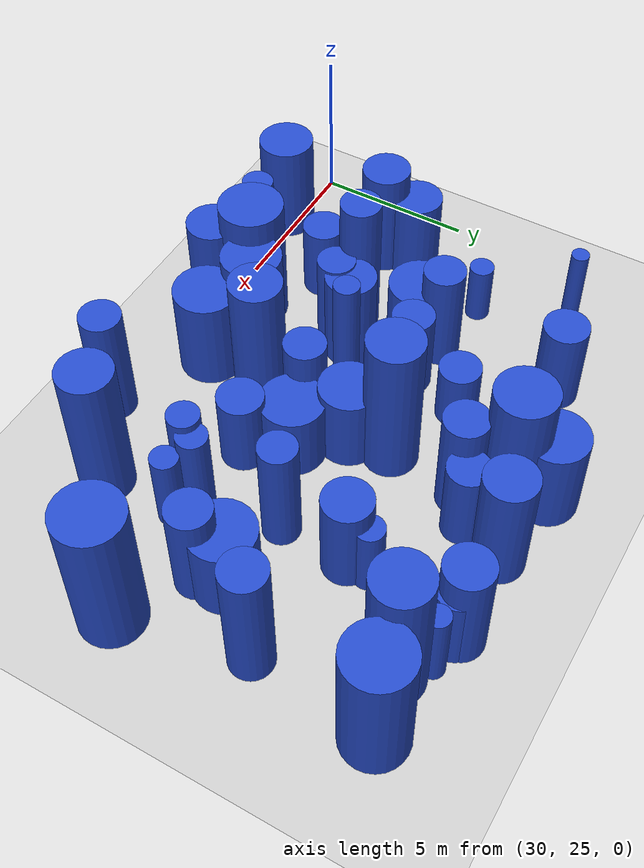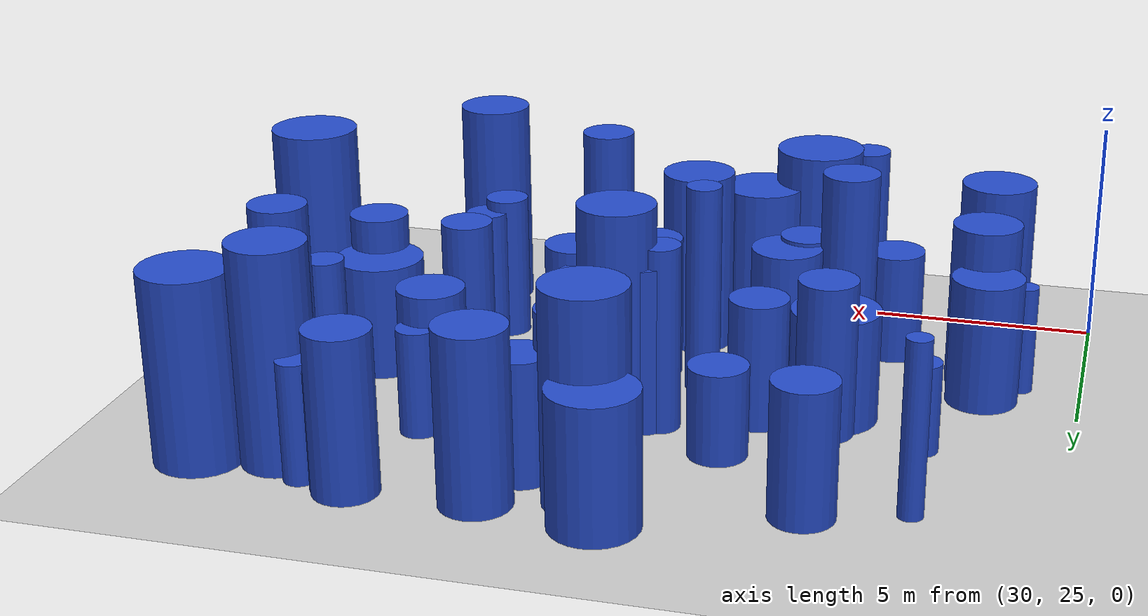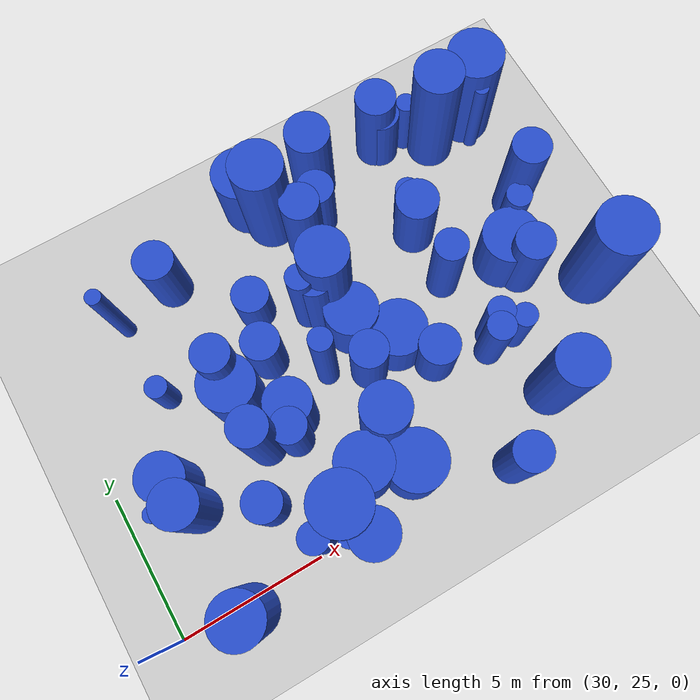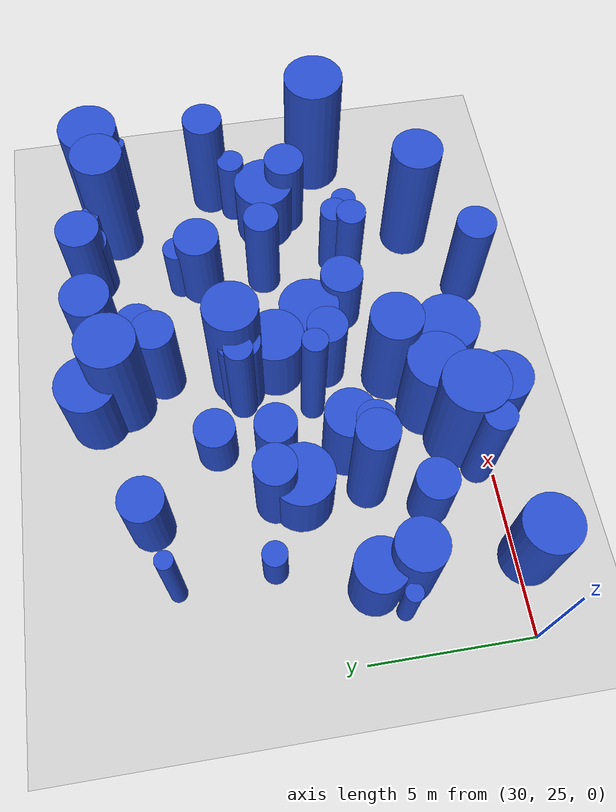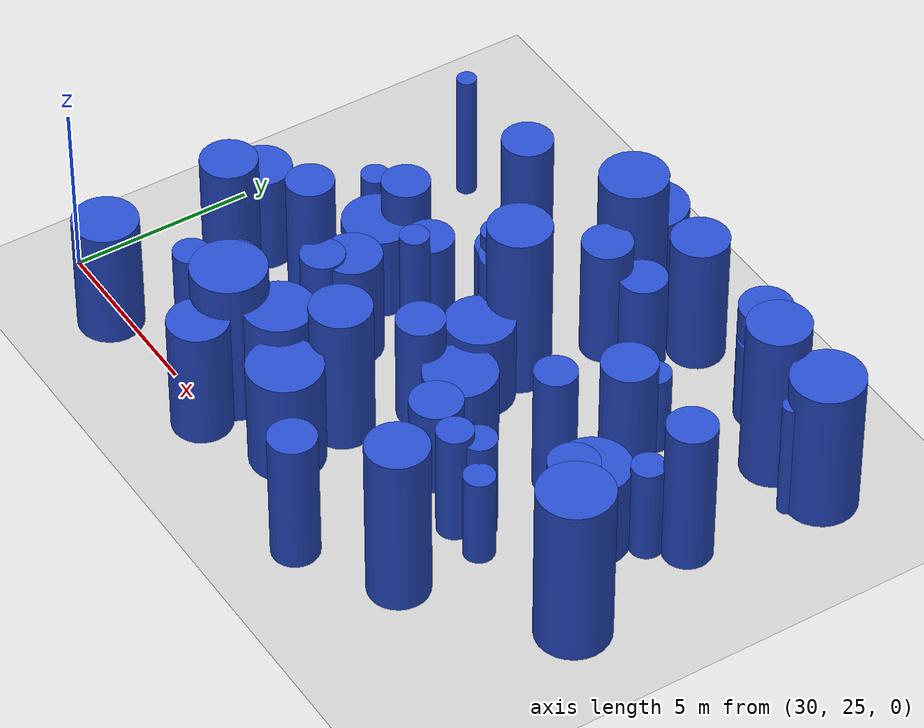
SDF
<sdf version="1.6">
 <world name="default">
  <model name="ground_plane">
   <static>1</static>
   <link name="link">
    <collision name="collision">
     <geometry><plane><normal>0 0 1</normal><size>100 100</size></plane></geometry>
     <surface><friction><ode><mu>100</mu><mu2>50</mu2></ode></friction></surface>
    </collision>
    <visual name="visual">
     <cast_shadows>0</cast_shadows>
     <geometry><plane><normal>0 0 1</normal><size>100 100</size></plane></geometry>
     <material>
      <script><uri>file://media/materials/scripts/gazebo.material</uri><name>Gazebo/Grey</name></script>
     </material>
    </visual>
   </link>
  </model>
  <model name="8">
   <static>0</static>
   <link name="link">
    <inertial>
     <mass>2</mass>
     <inertia><ixx>4.21888</ixx><ixy>0</ixy><ixz>0</ixz><iyy>4.21888</iyy><iyz>0</iyz><izz>0.689911</izz></inertia>
    </inertial>
    <collision name="collision">
     <geometry><cylinder><length>4.82115</length><radius>0.830609</radius></cylinder></geometry>
     <surface><contact><collide_without_contact>1</collide_without_contact></contact></surface>
    </collision>
    <visual name="visual">
     <geometry><cylinder><length>4.82115</length><radius>0.830609</radius></cylinder></geometry>
     <material>
      <script><uri>file://media/materials/scripts/gazebo.material</uri><name>Gazebo/Blue</name></script>
     </material>
    </visual>
    <gravity>0</gravity>
   </link>
   <pose>45.7281 35.9267 2.41058 0 -0 0</pose>
  </model>
  <model name="18">
   <static>0</static>
   <link name="link">
    <inertial>
     <mass>2</mass>
     <inertia><ixx>1.93693</ixx><ixy>0</ixy><ixz>0</ixz><iyy>1.93693</iyy><iyz>0</iyz><izz>0.344966</izz></inertia>
    </inertial>
    <collision name="collision">
     <geometry><cylinder><length>3.25372</length><radius>0.587338</radius></cylinder></geometry>
     <surface><contact><collide_without_contact>1</collide_without_contact></contact></surface>
    </collision>
    <visual name="visual">
     <geometry><cylinder><length>3.25372</length><radius>0.587338</radius></cylinder></geometry>
     <material>
      <script><uri>file://media/materials/scripts/gazebo.material</uri><name>Gazebo/Blue</name></script>
     </material>
    </visual>
    <gravity>0</gravity>
   </link>
   <pose>36.1652 28.7323 1.62686 0 -0 0</pose>
  </model>
  <model name="24">
   <static>0</static>
   <link name="link">
    <inertial>
     <mass>2</mass>
     <inertia><ixx>2.50462</ixx><ixy>0</ixy><ixz>0</ixz><iyy>2.50462</iyy><iyz>0</iyz><izz>0.451325</izz></inertia>
    </inertial>
    <collision name="collision">
     <geometry><cylinder><length>3.69781</length><radius>0.671807</radius></cylinder></geometry>
     <surface><contact><collide_without_contact>1</collide_without_contact></contact></surface>
    </collision>
    <visual name="visual">
     <geometry><cylinder><length>3.69781</length><radius>0.671807</radius></cylinder></geometry>
     <material>
      <script><uri>file://media/materials/scripts/gazebo.material</uri><name>Gazebo/Blue</name></script>
     </material>
    </visual>
    <gravity>0</gravity>
   </link>
   <pose>39.0289 32.3304 1.8489 0 -0 0</pose>
  </model>
  <model name="26">
   <static>0</static>
   <link name="link">
    <inertial>
     <mass>2</mass>
     <inertia><ixx>2.48469</ixx><ixy>0</ixy><ixz>0</ixz><iyy>2.48469</iyy><iyz>0</iyz><izz>0.314146</izz></inertia>
    </inertial>
    <collision name="collision">
     <geometry><cylinder><length>3.73707</length><radius>0.560487</radius></cylinder></geometry>
     <surface><contact><collide_without_contact>1</collide_without_contact></contact></surface>
    </collision>
    <visual name="visual">
     <geometry><cylinder><length>3.73707</length><radius>0.560487</radius></cylinder></geometry>
     <material>
      <script><uri>file://media/materials/scripts/gazebo.material</uri><name>Gazebo/Blue</name></script>
     </material>
    </visual>
    <gravity>0</gravity>
   </link>
   <pose>43.2934 31.0546 1.86853 0 -0 0</pose>
  </model>
  <model name="50">
   <static>0</static>
   <link name="link">
    <inertial>
     <mass>2</mass>
     <inertia><ixx>1.52309</ixx><ixy>0</ixy><ixz>0</ixz><iyy>1.52309</iyy><iyz>0</iyz><izz>0.943157</izz></inertia>
    </inertial>
    <collision name="collision">
     <geometry><cylinder><length>2.51179</length><radius>0.971163</radius></cylinder></geometry>
     <surface><contact><collide_without_contact>1</collide_without_contact></contact></surface>
    </collision>
    <visual name="visual">
     <geometry><cylinder><length>2.51179</length><radius>0.971163</radius></cylinder></geometry>
     <material>
      <script><uri>file://media/materials/scripts/gazebo.material</uri><name>Gazebo/Blue</name></script>
     </material>
    </visual>
    <gravity>0</gravity>
   </link>
   <pose>35.1033 31.0404 1.25589 0 -0 0</pose>
  </model>
  <model name="54">
   <static>0</static>
   <link name="link">
    <inertial>
     <mass>2</mass>
     <inertia><ixx>1.94131</ixx><ixy>0</ixy><ixz>0</ixz><iyy>1.94131</iyy><iyz>0</iyz><izz>0.231084</izz></inertia>
    </inertial>
    <collision name="collision">
     <geometry><cylinder><length>3.30977</length><radius>0.480712</radius></cylinder></geometry>
     <surface><contact><collide_without_contact>1</collide_without_contact></contact></surface>
    </collision>
    <visual name="visual">
     <geometry><cylinder><length>3.30977</length><radius>0.480712</radius></cylinder></geometry>
     <material>
      <script><uri>file://media/materials/scripts/gazebo.material</uri><name>Gazebo/Blue</name></script>
     </material>
    </visual>
    <gravity>0</gravity>
   </link>
   <pose>43.3469 28.1129 1.65489 0 -0 0</pose>
  </model>
  <model name="61">
   <static>0</static>
   <link name="link">
    <inertial>
     <mass>2</mass>
     <inertia><ixx>2.09542</ixx><ixy>0</ixy><ixz>0</ixz><iyy>2.09542</iyy><iyz>0</iyz><izz>0.981414</izz></inertia>
    </inertial>
    <collision name="collision">
     <geometry><cylinder><length>3.10294</length><radius>0.990663</radius></cylinder></geometry>
     <surface><contact><collide_without_contact>1</collide_without_contact></contact></surface>
    </collision>
    <visual name="visual">
     <geometry><cylinder><length>3.10294</length><radius>0.990663</radius></cylinder></geometry>
     <material>
      <script><uri>file://media/materials/scripts/gazebo.material</uri><name>Gazebo/Blue</name></script>
     </material>
    </visual>
    <gravity>0</gravity>
   </link>
   <pose>38.9949 25.9241 1.55147 0 -0 0</pose>
  </model>
  <model name="64">
   <static>0</static>
   <link name="link">
    <inertial>
     <mass>2</mass>
     <inertia><ixx>1.21441</ixx><ixy>0</ixy><ixz>0</ixz><iyy>1.21441</iyy><iyz>0</iyz><izz>0.120471</izz></inertia>
    </inertial>
    <collision name="collision">
     <geometry><cylinder><length>2.63155</length><radius>0.34709</radius></cylinder></geometry>
     <surface><contact><collide_without_contact>1</collide_without_contact></contact></surface>
    </collision>
    <visual name="visual">
     <geometry><cylinder><length>2.63155</length><radius>0.34709</radius></cylinder></geometry>
     <material>
      <script><uri>file://media/materials/scripts/gazebo.material</uri><name>Gazebo/Blue</name></script>
     </material>
    </visual>
    <gravity>0</gravity>
   </link>
   <pose>45.0063 36.6208 1.31577 0 -0 0</pose>
  </model>
  <model name="77">
   <static>0</static>
   <link name="link">
    <inertial>
     <mass>2</mass>
     <inertia>
      <ixx>1.03563</ixx>
      <ixy>0</ixy>
      <ixz>0</ixz>
      <iyy>1.03563</iyy>
      <iyz>0</iyz>
      <izz>0.0714737</izz>
     </inertia>
    </inertial>
    <collision name="collision">
     <geometry><cylinder><length>2.44936</length><radius>0.267346</radius></cylinder></geometry>
     <surface><contact><collide_without_contact>1</collide_without_contact></contact></surface>
    </collision>
    <visual name="visual">
     <geometry><cylinder><length>2.44936</length><radius>0.267346</radius></cylinder></geometry>
     <material>
      <script><uri>file://media/materials/scripts/gazebo.material</uri><name>Gazebo/Blue</name></script>
     </material>
    </visual>
    <gravity>0</gravity>
   </link>
   <pose>31.3145 28.5993 1.22468 0 -0 0</pose>
  </model>
  <model name="85">
   <static>0</static>
   <link name="link">
    <inertial>
     <mass>2</mass>
     <inertia><ixx>2.93221</ixx><ixy>0</ixy><ixz>0</ixz><iyy>2.93221</iyy><iyz>0</iyz><izz>0.192684</izz></inertia>
    </inertial>
    <collision name="collision">
     <geometry><cylinder><length>4.12495</length><radius>0.438958</radius></cylinder></geometry>
     <surface><contact><collide_without_contact>1</collide_without_contact></contact></surface>
    </collision>
    <visual name="visual">
     <geometry><cylinder><length>4.12495</length><radius>0.438958</radius></cylinder></geometry>
     <material>
      <script><uri>file://media/materials/scripts/gazebo.material</uri><name>Gazebo/Blue</name></script>
     </material>
    </visual>
    <gravity>0</gravity>
   </link>
   <pose>38.6 32.3805 2.06248 0 -0 0</pose>
  </model>
  <model name="124">
   <static>0</static>
   <link name="link">
    <inertial>
     <mass>2</mass>
     <inertia><ixx>1.24879</ixx><ixy>0</ixy><ixz>0</ixz><iyy>1.24879</iyy><iyz>0</iyz><izz>0.170517</izz></inertia>
    </inertial>
    <collision name="collision">
     <geometry><cylinder><length>2.64219</length><radius>0.412937</radius></cylinder></geometry>
     <surface><contact><collide_without_contact>1</collide_without_contact></contact></surface>
    </collision>
    <visual name="visual">
     <geometry><cylinder><length>2.64219</length><radius>0.412937</radius></cylinder></geometry>
     <material>
      <script><uri>file://media/materials/scripts/gazebo.material</uri><name>Gazebo/Blue</name></script>
     </material>
    </visual>
    <gravity>0</gravity>
   </link>
   <pose>44.3948 28.1453 1.3211 0 -0 0</pose>
  </model>
  <model name="127">
   <static>0</static>
   <link name="link">
    <inertial>
     <mass>2</mass>
     <inertia><ixx>2.70302</ixx><ixy>0</ixy><ixz>0</ixz><iyy>2.70302</iyy><iyz>0</iyz><izz>0.394791</izz></inertia>
    </inertial>
    <collision name="collision">
     <geometry><cylinder><length>3.87734</length><radius>0.628324</radius></cylinder></geometry>
     <surface><contact><collide_without_contact>1</collide_without_contact></contact></surface>
    </collision>
    <visual name="visual">
     <geometry><cylinder><length>3.87734</length><radius>0.628324</radius></cylinder></geometry>
     <material>
      <script><uri>file://media/materials/scripts/gazebo.material</uri><name>Gazebo/Blue</name></script>
     </material>
    </visual>
    <gravity>0</gravity>
   </link>
   <pose>41.9268 24.3981 1.93867 0 -0 0</pose>
  </model>
  <model name="133">
   <static>0</static>
   <link name="link">
    <inertial>
     <mass>2</mass>
     <inertia>
      <ixx>2.08785</ixx>
      <ixy>0</ixy>
      <ixz>0</ixz>
      <iyy>2.08785</iyy>
      <iyz>0</iyz>
      <izz>0.0660541</izz>
     </inertia>
    </inertial>
    <collision name="collision">
     <geometry><cylinder><length>3.51126</length><radius>0.25701</radius></cylinder></geometry>
     <surface><contact><collide_without_contact>1</collide_without_contact></contact></surface>
    </collision>
    <visual name="visual">
     <geometry><cylinder><length>3.51126</length><radius>0.25701</radius></cylinder></geometry>
     <material>
      <script><uri>file://media/materials/scripts/gazebo.material</uri><name>Gazebo/Blue</name></script>
     </material>
    </visual>
    <gravity>0</gravity>
   </link>
   <pose>47.1721 35.3749 1.75563 0 -0 0</pose>
  </model>
  <model name="157">
   <static>0</static>
   <link name="link">
    <inertial>
     <mass>2</mass>
     <inertia><ixx>1.66428</ixx><ixy>0</ixy><ixz>0</ixz><iyy>1.66428</iyy><iyz>0</iyz><izz>0.47442</izz></inertia>
    </inertial>
    <collision name="collision">
     <geometry><cylinder><length>2.92616</length><radius>0.688782</radius></cylinder></geometry>
     <surface><contact><collide_without_contact>1</collide_without_contact></contact></surface>
    </collision>
    <visual name="visual">
     <geometry><cylinder><length>2.92616</length><radius>0.688782</radius></cylinder></geometry>
     <material>
      <script><uri>file://media/materials/scripts/gazebo.material</uri><name>Gazebo/Blue</name></script>
     </material>
    </visual>
    <gravity>0</gravity>
   </link>
   <pose>34.9365 35.6566 1.46308 0 -0 0</pose>
  </model>
  <model name="177">
   <static>0</static>
   <link name="link">
    <inertial>
     <mass>2</mass>
     <inertia><ixx>2.3402</ixx><ixy>0</ixy><ixz>0</ixz><iyy>2.3402</iyy><iyz>0</iyz><izz>0.645349</izz></inertia>
    </inertial>
    <collision name="collision">
     <geometry><cylinder><length>3.47924</length><radius>0.803336</radius></cylinder></geometry>
     <surface><contact><collide_without_contact>1</collide_without_contact></contact></surface>
    </collision>
    <visual name="visual">
     <geometry><cylinder><length>3.47924</length><radius>0.803336</radius></cylinder></geometry>
     <material>
      <script><uri>file://media/materials/scripts/gazebo.material</uri><name>Gazebo/Blue</name></script>
     </material>
    </visual>
    <gravity>0</gravity>
   </link>
   <pose>36.8092 24.7473 1.73962 0 -0 0</pose>
  </model>
  <model name="178">
   <static>0</static>
   <link name="link">
    <inertial>
     <mass>2</mass>
     <inertia><ixx>2.36862</ixx><ixy>0</ixy><ixz>0</ixz><iyy>2.36862</iyy><iyz>0</iyz><izz>0.763375</izz></inertia>
    </inertial>
    <collision name="collision">
     <geometry><cylinder><length>3.45276</length><radius>0.873713</radius></cylinder></geometry>
     <surface><contact><collide_without_contact>1</collide_without_contact></contact></surface>
    </collision>
    <visual name="visual">
     <geometry><cylinder><length>3.45276</length><radius>0.873713</radius></cylinder></geometry>
     <material>
      <script><uri>file://media/materials/scripts/gazebo.material</uri><name>Gazebo/Blue</name></script>
     </material>
    </visual>
    <gravity>0</gravity>
   </link>
   <pose>32.3194 24.6572 1.72638 0 -0 0</pose>
  </model>
  <model name="181">
   <static>0</static>
   <link name="link">
    <inertial>
     <mass>2</mass>
     <inertia><ixx>4.4473</ixx><ixy>0</ixy><ixz>0</ixz><iyy>4.4473</iyy><iyz>0</iyz><izz>0.703906</izz></inertia>
    </inertial>
    <collision name="collision">
     <geometry><cylinder><length>4.95702</length><radius>0.838991</radius></cylinder></geometry>
     <surface><contact><collide_without_contact>1</collide_without_contact></contact></surface>
    </collision>
    <visual name="visual">
     <geometry><cylinder><length>4.95702</length><radius>0.838991</radius></cylinder></geometry>
     <material>
      <script><uri>file://media/materials/scripts/gazebo.material</uri><name>Gazebo/Blue</name></script>
     </material>
    </visual>
    <gravity>0</gravity>
   </link>
   <pose>39.5142 32.4462 2.47851 0 -0 0</pose>
  </model>
  <model name="187">
   <static>0</static>
   <link name="link">
    <inertial>
     <mass>2</mass>
     <inertia><ixx>3.28038</ixx><ixy>0</ixy><ixz>0</ixz><iyy>3.28038</iyy><iyz>0</iyz><izz>0.426535</izz></inertia>
    </inertial>
    <collision name="collision">
     <geometry><cylinder><length>4.28983</length><radius>0.653096</radius></cylinder></geometry>
     <surface><contact><collide_without_contact>1</collide_without_contact></contact></surface>
    </collision>
    <visual name="visual">
     <geometry><cylinder><length>4.28983</length><radius>0.653096</radius></cylinder></geometry>
     <material>
      <script><uri>file://media/materials/scripts/gazebo.material</uri><name>Gazebo/Blue</name></script>
     </material>
    </visual>
    <gravity>0</gravity>
   </link>
   <pose>47.092 32.4595 2.14492 0 -0 0</pose>
  </model>
  <model name="188">
   <static>0</static>
   <link name="link">
    <inertial>
     <mass>2</mass>
     <inertia><ixx>4.17685</ixx><ixy>0</ixy><ixz>0</ixz><iyy>4.17685</iyy><iyz>0</iyz><izz>0.658429</izz></inertia>
    </inertial>
    <collision name="collision">
     <geometry><cylinder><length>4.80477</length><radius>0.811436</radius></cylinder></geometry>
     <surface><contact><collide_without_contact>1</collide_without_contact></contact></surface>
    </collision>
    <visual name="visual">
     <geometry><cylinder><length>4.80477</length><radius>0.811436</radius></cylinder></geometry>
     <material>
      <script><uri>file://media/materials/scripts/gazebo.material</uri><name>Gazebo/Blue</name></script>
     </material>
    </visual>
    <gravity>0</gravity>
   </link>
   <pose>44.3475 25.8647 2.40238 0 -0 0</pose>
  </model>
  <model name="196">
   <static>0</static>
   <link name="link">
    <inertial>
     <mass>2</mass>
     <inertia><ixx>1.2622</ixx><ixy>0</ixy><ixz>0</ixz><iyy>1.2622</iyy><iyz>0</iyz><izz>0.426876</izz></inertia>
    </inertial>
    <collision name="collision">
     <geometry><cylinder><length>2.5085</length><radius>0.653358</radius></cylinder></geometry>
     <surface><contact><collide_without_contact>1</collide_without_contact></contact></surface>
    </collision>
    <visual name="visual">
     <geometry><cylinder><length>2.5085</length><radius>0.653358</radius></cylinder></geometry>
     <material>
      <script><uri>file://media/materials/scripts/gazebo.material</uri><name>Gazebo/Blue</name></script>
     </material>
    </visual>
    <gravity>0</gravity>
   </link>
   <pose>34.3565 27.2331 1.25425 0 -0 0</pose>
  </model>
  <model name="204">
   <static>0</static>
   <link name="link">
    <inertial>
     <mass>2</mass>
     <inertia><ixx>1.33373</ixx><ixy>0</ixy><ixz>0</ixz><iyy>1.33373</iyy><iyz>0</iyz><izz>0.437985</izz></inertia>
    </inertial>
    <collision name="collision">
     <geometry><cylinder><length>2.58619</length><radius>0.661805</radius></cylinder></geometry>
     <surface><contact><collide_without_contact>1</collide_without_contact></contact></surface>
    </collision>
    <visual name="visual">
     <geometry><cylinder><length>2.58619</length><radius>0.661805</radius></cylinder></geometry>
     <material>
      <script><uri>file://media/materials/scripts/gazebo.material</uri><name>Gazebo/Blue</name></script>
     </material>
    </visual>
    <gravity>0</gravity>
   </link>
   <pose>44.0384 36.7331 1.2931 0 -0 0</pose>
  </model>
  <model name="208">
   <static>0</static>
   <link name="link">
    <inertial>
     <mass>2</mass>
     <inertia>
      <ixx>2.51796</ixx>
      <ixy>0</ixy>
      <ixz>0</ixz>
      <iyy>2.51796</iyy>
      <iyz>0</iyz>
      <izz>0.0771087</izz>
     </inertia>
    </inertial>
    <collision name="collision">
     <geometry><cylinder><length>3.857</length><radius>0.277685</radius></cylinder></geometry>
     <surface><contact><collide_without_contact>1</collide_without_contact></contact></surface>
    </collision>
    <visual name="visual">
     <geometry><cylinder><length>3.857</length><radius>0.277685</radius></cylinder></geometry>
     <material>
      <script><uri>file://media/materials/scripts/gazebo.material</uri><name>Gazebo/Blue</name></script>
     </material>
    </visual>
    <gravity>0</gravity>
   </link>
   <pose>45.3938 36.0645 1.9285 0 -0 0</pose>
  </model>
  <model name="210">
   <static>0</static>
   <link name="link">
    <inertial>
     <mass>2</mass>
     <inertia><ixx>3.77643</ixx><ixy>0</ixy><ixz>0</ixz><iyy>3.77643</iyy><iyz>0</iyz><izz>0.149231</izz></inertia>
    </inertial>
    <collision name="collision">
     <geometry><cylinder><length>4.71284</length><radius>0.386304</radius></cylinder></geometry>
     <surface><contact><collide_without_contact>1</collide_without_contact></contact></surface>
    </collision>
    <visual name="visual">
     <geometry><cylinder><length>4.71284</length><radius>0.386304</radius></cylinder></geometry>
     <material>
      <script><uri>file://media/materials/scripts/gazebo.material</uri><name>Gazebo/Blue</name></script>
     </material>
    </visual>
    <gravity>0</gravity>
   </link>
   <pose>38.1766 30.1995 2.35642 0 -0 0</pose>
  </model>
  <model name="214">
   <static>0</static>
   <link name="link">
    <inertial>
     <mass>2</mass>
     <inertia><ixx>1.5408</ixx><ixy>0</ixy><ixz>0</ixz><iyy>1.5408</iyy><iyz>0</iyz><izz>0.418994</izz></inertia>
    </inertial>
    <collision name="collision">
     <geometry><cylinder><length>2.82628</length><radius>0.647297</radius></cylinder></geometry>
     <surface><contact><collide_without_contact>1</collide_without_contact></contact></surface>
    </collision>
    <visual name="visual">
     <geometry><cylinder><length>2.82628</length><radius>0.647297</radius></cylinder></geometry>
     <material>
      <script><uri>file://media/materials/scripts/gazebo.material</uri><name>Gazebo/Blue</name></script>
     </material>
    </visual>
    <gravity>0</gravity>
   </link>
   <pose>36.6525 31.5929 1.41314 0 -0 0</pose>
  </model>
  <model name="216">
   <static>0</static>
   <link name="link">
    <inertial>
     <mass>2</mass>
     <inertia><ixx>1.78362</ixx><ixy>0</ixy><ixz>0</ixz><iyy>1.78362</iyy><iyz>0</iyz><izz>0.535905</izz></inertia>
    </inertial>
    <collision name="collision">
     <geometry><cylinder><length>3.01562</length><radius>0.732056</radius></cylinder></geometry>
     <surface><contact><collide_without_contact>1</collide_without_contact></contact></surface>
    </collision>
    <visual name="visual">
     <geometry><cylinder><length>3.01562</length><radius>0.732056</radius></cylinder></geometry>
     <material>
      <script><uri>file://media/materials/scripts/gazebo.material</uri><name>Gazebo/Blue</name></script>
     </material>
    </visual>
    <gravity>0</gravity>
   </link>
   <pose>43.3744 33.1787 1.50781 0 -0 0</pose>
  </model>
  <model name="255">
   <static>0</static>
   <link name="link">
    <inertial>
     <mass>2</mass>
     <inertia><ixx>3.68363</ixx><ixy>0</ixy><ixz>0</ixz><iyy>3.68363</iyy><iyz>0</iyz><izz>0.991312</izz></inertia>
    </inertial>
    <collision name="collision">
     <geometry><cylinder><length>4.37354</length><radius>0.995646</radius></cylinder></geometry>
     <surface><contact><collide_without_contact>1</collide_without_contact></contact></surface>
    </collision>
    <visual name="visual">
     <geometry><cylinder><length>4.37354</length><radius>0.995646</radius></cylinder></geometry>
     <material>
      <script><uri>file://media/materials/scripts/gazebo.material</uri><name>Gazebo/Blue</name></script>
     </material>
    </visual>
    <gravity>0</gravity>
   </link>
   <pose>36.3838 25.9079 2.18677 0 -0 0</pose>
  </model>
  <model name="258">
   <static>0</static>
   <link name="link">
    <inertial>
     <mass>2</mass>
     <inertia>
      <ixx>0.885505</ixx>
      <ixy>0</ixy>
      <ixz>0</ixz>
      <iyy>0.885505</iyy>
      <iyz>0</iyz>
      <izz>0.412516</izz>
     </inertia>
    </inertial>
    <collision name="collision">
     <geometry><cylinder><length>2.01878</length><radius>0.642274</radius></cylinder></geometry>
     <surface><contact><collide_without_contact>1</collide_without_contact></contact></surface>
    </collision>
    <visual name="visual">
     <geometry><cylinder><length>2.01878</length><radius>0.642274</radius></cylinder></geometry>
     <material>
      <script><uri>file://media/materials/scripts/gazebo.material</uri><name>Gazebo/Blue</name></script>
     </material>
    </visual>
    <gravity>0</gravity>
   </link>
   <pose>37.1173 33.4019 1.00939 0 -0 0</pose>
  </model>
  <model name="267">
   <static>0</static>
   <link name="link">
    <inertial>
     <mass>2</mass>
     <inertia><ixx>3.14583</ixx><ixy>0</ixy><ixz>0</ixz><iyy>3.14583</iyy><iyz>0</iyz><izz>0.228131</izz></inertia>
    </inertial>
    <collision name="collision">
     <geometry><cylinder><length>4.26504</length><radius>0.47763</radius></cylinder></geometry>
     <surface><contact><collide_without_contact>1</collide_without_contact></contact></surface>
    </collision>
    <visual name="visual">
     <geometry><cylinder><length>4.26504</length><radius>0.47763</radius></cylinder></geometry>
     <material>
      <script><uri>file://media/materials/scripts/gazebo.material</uri><name>Gazebo/Blue</name></script>
     </material>
    </visual>
    <gravity>0</gravity>
   </link>
   <pose>35.2957 25.4706 2.13252 0 -0 0</pose>
  </model>
  <model name="280">
   <static>0</static>
   <link name="link">
    <inertial>
     <mass>2</mass>
     <inertia><ixx>1.6849</ixx><ixy>0</ixy><ixz>0</ixz><iyy>1.6849</iyy><iyz>0</iyz><izz>0.216635</izz></inertia>
    </inertial>
    <collision name="collision">
     <geometry><cylinder><length>3.07563</length><radius>0.46544</radius></cylinder></geometry>
     <surface><contact><collide_without_contact>1</collide_without_contact></contact></surface>
    </collision>
    <visual name="visual">
     <geometry><cylinder><length>3.07563</length><radius>0.46544</radius></cylinder></geometry>
     <material>
      <script><uri>file://media/materials/scripts/gazebo.material</uri><name>Gazebo/Blue</name></script>
     </material>
    </visual>
    <gravity>0</gravity>
   </link>
   <pose>43.684 28.5887 1.53781 0 -0 0</pose>
  </model>
  <model name="287">
   <static>0</static>
   <link name="link">
    <inertial>
     <mass>2</mass>
     <inertia><ixx>1.98686</ixx><ixy>0</ixy><ixz>0</ixz><iyy>1.98686</iyy><iyz>0</iyz><izz>0.617269</izz></inertia>
    </inertial>
    <collision name="collision">
     <geometry><cylinder><length>3.17322</length><radius>0.785664</radius></cylinder></geometry>
     <surface><contact><collide_without_contact>1</collide_without_contact></contact></surface>
    </collision>
    <visual name="visual">
     <geometry><cylinder><length>3.17322</length><radius>0.785664</radius></cylinder></geometry>
     <material>
      <script><uri>file://media/materials/scripts/gazebo.material</uri><name>Gazebo/Blue</name></script>
     </material>
    </visual>
    <gravity>0</gravity>
   </link>
   <pose>36.4824 29.401 1.58661 0 -0 0</pose>
  </model>
  <model name="288">
   <static>0</static>
   <link name="link">
    <inertial>
     <mass>2</mass>
     <inertia>
      <ixx>0.741917</ixx>
      <ixy>0</ixy>
      <ixz>0</ixz>
      <iyy>0.741917</iyy>
      <iyz>0</iyz>
      <izz>0.144603</izz>
     </inertia>
    </inertial>
    <collision name="collision">
     <geometry><cylinder><length>2.00442</length><radius>0.380267</radius></cylinder></geometry>
     <surface><contact><collide_without_contact>1</collide_without_contact></contact></surface>
    </collision>
    <visual name="visual">
     <geometry><cylinder><length>2.00442</length><radius>0.380267</radius></cylinder></geometry>
     <material>
      <script><uri>file://media/materials/scripts/gazebo.material</uri><name>Gazebo/Blue</name></script>
     </material>
    </visual>
    <gravity>0</gravity>
   </link>
   <pose>33.0767 32.1664 1.00221 0 -0 0</pose>
  </model>
  <model name="290">
   <static>0</static>
   <link name="link">
    <inertial>
     <mass>2</mass>
     <inertia><ixx>1.59066</ixx><ixy>0</ixy><ixz>0</ixz><iyy>1.59066</iyy><iyz>0</iyz><izz>0.969533</izz></inertia>
    </inertial>
    <collision name="collision">
     <geometry><cylinder><length>2.57592</length><radius>0.984649</radius></cylinder></geometry>
     <surface><contact><collide_without_contact>1</collide_without_contact></contact></surface>
    </collision>
    <visual name="visual">
     <geometry><cylinder><length>2.57592</length><radius>0.984649</radius></cylinder></geometry>
     <material>
      <script><uri>file://media/materials/scripts/gazebo.material</uri><name>Gazebo/Blue</name></script>
     </material>
    </visual>
    <gravity>0</gravity>
   </link>
   <pose>45.5229 30.6887 1.28796 0 -0 0</pose>
  </model>
  <model name="298">
   <static>0</static>
   <link name="link">
    <inertial>
     <mass>2</mass>
     <inertia><ixx>3.18825</ixx><ixy>0</ixy><ixz>0</ixz><iyy>3.18825</iyy><iyz>0</iyz><izz>0.661023</izz></inertia>
    </inertial>
    <collision name="collision">
     <geometry><cylinder><length>4.14083</length><radius>0.813033</radius></cylinder></geometry>
     <surface><contact><collide_without_contact>1</collide_without_contact></contact></surface>
    </collision>
    <visual name="visual">
     <geometry><cylinder><length>4.14083</length><radius>0.813033</radius></cylinder></geometry>
     <material>
      <script><uri>file://media/materials/scripts/gazebo.material</uri><name>Gazebo/Blue</name></script>
     </material>
    </visual>
    <gravity>0</gravity>
   </link>
   <pose>38.8836 27.6212 2.07041 0 -0 0</pose>
  </model>
  <model name="303">
   <static>0</static>
   <link name="link">
    <inertial>
     <mass>2</mass>
     <inertia><ixx>2.58928</ixx><ixy>0</ixy><ixz>0</ixz><iyy>2.58928</iyy><iyz>0</iyz><izz>0.867077</izz></inertia>
    </inertial>
    <collision name="collision">
     <geometry><cylinder><length>3.59645</length><radius>0.93117</radius></cylinder></geometry>
     <surface><contact><collide_without_contact>1</collide_without_contact></contact></surface>
    </collision>
    <visual name="visual">
     <geometry><cylinder><length>3.59645</length><radius>0.93117</radius></cylinder></geometry>
     <material>
      <script><uri>file://media/materials/scripts/gazebo.material</uri><name>Gazebo/Blue</name></script>
     </material>
    </visual>
    <gravity>0</gravity>
   </link>
   <pose>37.566 26.6227 1.79823 0 -0 0</pose>
  </model>
  <model name="304">
   <static>0</static>
   <link name="link">
    <inertial>
     <mass>2</mass>
     <inertia><ixx>1.89572</ixx><ixy>0</ixy><ixz>0</ixz><iyy>1.89572</iyy><iyz>0</iyz><izz>0.409048</izz></inertia>
    </inertial>
    <collision name="collision">
     <geometry><cylinder><length>3.18546</length><radius>0.639569</radius></cylinder></geometry>
     <surface><contact><collide_without_contact>1</collide_without_contact></contact></surface>
    </collision>
    <visual name="visual">
     <geometry><cylinder><length>3.18546</length><radius>0.639569</radius></cylinder></geometry>
     <material>
      <script><uri>file://media/materials/scripts/gazebo.material</uri><name>Gazebo/Blue</name></script>
     </material>
    </visual>
    <gravity>0</gravity>
   </link>
   <pose>39.4446 29.5752 1.59273 0 -0 0</pose>
  </model>
  <model name="308">
   <static>0</static>
   <link name="link">
    <inertial>
     <mass>2</mass>
     <inertia><ixx>2.3311</ixx><ixy>0</ixy><ixz>0</ixz><iyy>2.3311</iyy><iyz>0</iyz><izz>0.447304</izz></inertia>
    </inertial>
    <collision name="collision">
     <geometry><cylinder><length>3.55594</length><radius>0.668808</radius></cylinder></geometry>
     <surface><contact><collide_without_contact>1</collide_without_contact></contact></surface>
    </collision>
    <visual name="visual">
     <geometry><cylinder><length>3.55594</length><radius>0.668808</radius></cylinder></geometry>
     <material>
      <script><uri>file://media/materials/scripts/gazebo.material</uri><name>Gazebo/Blue</name></script>
     </material>
    </visual>
    <gravity>0</gravity>
   </link>
   <pose>39.8935 34.8256 1.77797 0 -0 0</pose>
  </model>
  <model name="322">
   <static>0</static>
   <link name="link">
    <inertial>
     <mass>2</mass>
     <inertia><ixx>1.40728</ixx><ixy>0</ixy><ixz>0</ixz><iyy>1.40728</iyy><iyz>0</iyz><izz>0.198981</izz></inertia>
    </inertial>
    <collision name="collision">
     <geometry><cylinder><length>2.8012</length><radius>0.446073</radius></cylinder></geometry>
     <surface><contact><collide_without_contact>1</collide_without_contact></contact></surface>
    </collision>
    <visual name="visual">
     <geometry><cylinder><length>2.8012</length><radius>0.446073</radius></cylinder></geometry>
     <material>
      <script><uri>file://media/materials/scripts/gazebo.material</uri><name>Gazebo/Blue</name></script>
     </material>
    </visual>
    <gravity>0</gravity>
   </link>
   <pose>46.431 31.6946 1.4006 0 -0 0</pose>
  </model>
  <model name="325">
   <static>0</static>
   <link name="link">
    <inertial>
     <mass>2</mass>
     <inertia><ixx>1.3186</ixx><ixy>0</ixy><ixz>0</ixz><iyy>1.3186</iyy><iyz>0</iyz><izz>0.941348</izz></inertia>
    </inertial>
    <collision name="collision">
     <geometry><cylinder><length>2.25556</length><radius>0.970231</radius></cylinder></geometry>
     <surface><contact><collide_without_contact>1</collide_without_contact></contact></surface>
    </collision>
    <visual name="visual">
     <geometry><cylinder><length>2.25556</length><radius>0.970231</radius></cylinder></geometry>
     <material>
      <script><uri>file://media/materials/scripts/gazebo.material</uri><name>Gazebo/Blue</name></script>
     </material>
    </visual>
    <gravity>0</gravity>
   </link>
   <pose>40.7413 29.9184 1.12778 0 -0 0</pose>
  </model>
  <model name="332">
   <static>0</static>
   <link name="link">
    <inertial>
     <mass>2</mass>
     <inertia><ixx>2.59327</ixx><ixy>0</ixy><ixz>0</ixz><iyy>2.59327</iyy><iyz>0</iyz><izz>0.578825</izz></inertia>
    </inertial>
    <collision name="collision">
     <geometry><cylinder><length>3.71795</length><radius>0.760805</radius></cylinder></geometry>
     <surface><contact><collide_without_contact>1</collide_without_contact></contact></surface>
    </collision>
    <visual name="visual">
     <geometry><cylinder><length>3.71795</length><radius>0.760805</radius></cylinder></geometry>
     <material>
      <script><uri>file://media/materials/scripts/gazebo.material</uri><name>Gazebo/Blue</name></script>
     </material>
    </visual>
    <gravity>0</gravity>
   </link>
   <pose>32.2605 28.3157 1.85898 0 -0 0</pose>
  </model>
  <model name="343">
   <static>0</static>
   <link name="link">
    <inertial>
     <mass>2</mass>
     <inertia><ixx>2.32475</ixx><ixy>0</ixy><ixz>0</ixz><iyy>2.32475</iyy><iyz>0</iyz><izz>0.492541</izz></inertia>
    </inertial>
    <collision name="collision">
     <geometry><cylinder><length>3.53141</length><radius>0.701813</radius></cylinder></geometry>
     <surface><contact><collide_without_contact>1</collide_without_contact></contact></surface>
    </collision>
    <visual name="visual">
     <geometry><cylinder><length>3.53141</length><radius>0.701813</radius></cylinder></geometry>
     <material>
      <script><uri>file://media/materials/scripts/gazebo.material</uri><name>Gazebo/Blue</name></script>
     </material>
    </visual>
    <gravity>0</gravity>
   </link>
   <pose>43.9186 36.8564 1.76571 0 -0 0</pose>
  </model>
  <model name="349">
   <static>0</static>
   <link name="link">
    <inertial>
     <mass>2</mass>
     <inertia><ixx>1.31863</ixx><ixy>0</ixy><ixz>0</ixz><iyy>1.31863</iyy><iyz>0</iyz><izz>0.481188</izz></inertia>
    </inertial>
    <collision name="collision">
     <geometry><cylinder><length>2.54327</length><radius>0.693677</radius></cylinder></geometry>
     <surface><contact><collide_without_contact>1</collide_without_contact></contact></surface>
    </collision>
    <visual name="visual">
     <geometry><cylinder><length>2.54327</length><radius>0.693677</radius></cylinder></geometry>
     <material>
      <script><uri>file://media/materials/scripts/gazebo.material</uri><name>Gazebo/Blue</name></script>
     </material>
    </visual>
    <gravity>0</gravity>
   </link>
   <pose>41.5416 28.7138 1.27164 0 -0 0</pose>
  </model>
  <model name="350">
   <static>0</static>
   <link name="link">
    <inertial>
     <mass>2</mass>
     <inertia><ixx>2.06147</ixx><ixy>0</ixy><ixz>0</ixz><iyy>2.06147</iyy><iyz>0</iyz><izz>0.438026</izz></inertia>
    </inertial>
    <collision name="collision">
     <geometry><cylinder><length>3.32487</length><radius>0.661835</radius></cylinder></geometry>
     <surface><contact><collide_without_contact>1</collide_without_contact></contact></surface>
    </collision>
    <visual name="visual">
     <geometry><cylinder><length>3.32487</length><radius>0.661835</radius></cylinder></geometry>
     <material>
      <script><uri>file://media/materials/scripts/gazebo.material</uri><name>Gazebo/Blue</name></script>
     </material>
    </visual>
    <gravity>0</gravity>
   </link>
   <pose>45.7963 29.9399 1.66243 0 -0 0</pose>
  </model>
  <model name="370">
   <static>0</static>
   <link name="link">
    <inertial>
     <mass>2</mass>
     <inertia><ixx>1.48928</ixx><ixy>0</ixy><ixz>0</ixz><iyy>1.48928</iyy><iyz>0</iyz><izz>0.834055</izz></inertia>
    </inertial>
    <collision name="collision">
     <geometry><cylinder><length>2.53644</length><radius>0.913266</radius></cylinder></geometry>
     <surface><contact><collide_without_contact>1</collide_without_contact></contact></surface>
    </collision>
    <visual name="visual">
     <geometry><cylinder><length>2.53644</length><radius>0.913266</radius></cylinder></geometry>
     <material>
      <script><uri>file://media/materials/scripts/gazebo.material</uri><name>Gazebo/Blue</name></script>
     </material>
    </visual>
    <gravity>0</gravity>
   </link>
   <pose>39.6919 31.1682 1.26822 0 -0 0</pose>
  </model>
  <model name="372">
   <static>0</static>
   <link name="link">
    <inertial>
     <mass>2</mass>
     <inertia><ixx>4.12893</ixx><ixy>0</ixy><ixz>0</ixz><iyy>4.12893</iyy><iyz>0</iyz><izz>0.393455</izz></inertia>
    </inertial>
    <collision name="collision">
     <geometry><cylinder><length>4.85729</length><radius>0.62726</radius></cylinder></geometry>
     <surface><contact><collide_without_contact>1</collide_without_contact></contact></surface>
    </collision>
    <visual name="visual">
     <geometry><cylinder><length>4.85729</length><radius>0.62726</radius></cylinder></geometry>
     <material>
      <script><uri>file://media/materials/scripts/gazebo.material</uri><name>Gazebo/Blue</name></script>
     </material>
    </visual>
    <gravity>0</gravity>
   </link>
   <pose>35.1838 28.9952 2.42864 0 -0 0</pose>
  </model>
  <model name="385">
   <static>0</static>
   <link name="link">
    <inertial>
     <mass>2</mass>
     <inertia><ixx>2.72961</ixx><ixy>0</ixy><ixz>0</ixz><iyy>2.72961</iyy><iyz>0</iyz><izz>0.588335</izz></inertia>
    </inertial>
    <collision name="collision">
     <geometry><cylinder><length>3.82265</length><radius>0.76703</radius></cylinder></geometry>
     <surface><contact><collide_without_contact>1</collide_without_contact></contact></surface>
    </collision>
    <visual name="visual">
     <geometry><cylinder><length>3.82265</length><radius>0.76703</radius></cylinder></geometry>
     <material>
      <script><uri>file://media/materials/scripts/gazebo.material</uri><name>Gazebo/Blue</name></script>
     </material>
    </visual>
    <gravity>0</gravity>
   </link>
   <pose>41.2471 36.7062 1.91133 0 -0 0</pose>
  </model>
  <model name="398">
   <static>0</static>
   <link name="link">
    <inertial>
     <mass>2</mass>
     <inertia><ixx>1.79237</ixx><ixy>0</ixy><ixz>0</ixz><iyy>1.79237</iyy><iyz>0</iyz><izz>0.219854</izz></inertia>
    </inertial>
    <collision name="collision">
     <geometry><cylinder><length>3.17721</length><radius>0.468886</radius></cylinder></geometry>
     <surface><contact><collide_without_contact>1</collide_without_contact></contact></surface>
    </collision>
    <visual name="visual">
     <geometry><cylinder><length>3.17721</length><radius>0.468886</radius></cylinder></geometry>
     <material>
      <script><uri>file://media/materials/scripts/gazebo.material</uri><name>Gazebo/Blue</name></script>
     </material>
    </visual>
    <gravity>0</gravity>
   </link>
   <pose>36.542 24.6012 1.5886 0 -0 0</pose>
  </model>
  <model name="404">
   <static>0</static>
   <link name="link">
    <inertial>
     <mass>2</mass>
     <inertia><ixx>1.70128</ixx><ixy>0</ixy><ixz>0</ixz><iyy>1.70128</iyy><iyz>0</iyz><izz>0.626794</izz></inertia>
    </inertial>
    <collision name="collision">
     <geometry><cylinder><length>2.88571</length><radius>0.791703</radius></cylinder></geometry>
     <surface><contact><collide_without_contact>1</collide_without_contact></contact></surface>
    </collision>
    <visual name="visual">
     <geometry><cylinder><length>2.88571</length><radius>0.791703</radius></cylinder></geometry>
     <material>
      <script><uri>file://media/materials/scripts/gazebo.material</uri><name>Gazebo/Blue</name></script>
     </material>
    </visual>
    <gravity>0</gravity>
   </link>
   <pose>32.0973 29.3707 1.44285 0 -0 0</pose>
  </model>
  <model name="412">
   <static>0</static>
   <link name="link">
    <inertial>
     <mass>2</mass>
     <inertia>
      <ixx>2.42125</ixx>
      <ixy>0</ixy>
      <ixz>0</ixz>
      <iyy>2.42125</iyy>
      <iyz>0</iyz>
      <izz>0.0709429</izz>
     </inertia>
    </inertial>
    <collision name="collision">
     <geometry><cylinder><length>3.78348</length><radius>0.266351</radius></cylinder></geometry>
     <surface><contact><collide_without_contact>1</collide_without_contact></contact></surface>
    </collision>
    <visual name="visual">
     <geometry><cylinder><length>3.78348</length><radius>0.266351</radius></cylinder></geometry>
     <material>
      <script><uri>file://media/materials/scripts/gazebo.material</uri><name>Gazebo/Blue</name></script>
     </material>
    </visual>
    <gravity>0</gravity>
   </link>
   <pose>32.8941 35.0908 1.89174 0 -0 0</pose>
  </model>
  <model name="415">
   <static>0</static>
   <link name="link">
    <inertial>
     <mass>2</mass>
     <inertia><ixx>3.4222</ixx><ixy>0</ixy><ixz>0</ixz><iyy>3.4222</iyy><iyz>0</iyz><izz>0.924749</izz></inertia>
    </inertial>
    <collision name="collision">
     <geometry><cylinder><length>4.21414</length><radius>0.961639</radius></cylinder></geometry>
     <surface><contact><collide_without_contact>1</collide_without_contact></contact></surface>
    </collision>
    <visual name="visual">
     <geometry><cylinder><length>4.21414</length><radius>0.961639</radius></cylinder></geometry>
     <material>
      <script><uri>file://media/materials/scripts/gazebo.material</uri><name>Gazebo/Blue</name></script>
     </material>
    </visual>
    <gravity>0</gravity>
   </link>
   <pose>47.3944 36.2316 2.10707 0 -0 0</pose>
  </model>
  <model name="416">
   <static>0</static>
   <link name="link">
    <inertial>
     <mass>2</mass>
     <inertia><ixx>4.30376</ixx><ixy>0</ixy><ixz>0</ixz><iyy>4.30376</iyy><iyz>0</iyz><izz>0.96384</izz></inertia>
    </inertial>
    <collision name="collision">
     <geometry><cylinder><length>4.78864</length><radius>0.981754</radius></cylinder></geometry>
     <surface><contact><collide_without_contact>1</collide_without_contact></contact></surface>
    </collision>
    <visual name="visual">
     <geometry><cylinder><length>4.78864</length><radius>0.981754</radius></cylinder></geometry>
     <material>
      <script><uri>file://media/materials/scripts/gazebo.material</uri><name>Gazebo/Blue</name></script>
     </material>
    </visual>
    <gravity>0</gravity>
   </link>
   <pose>47.8529 28.6198 2.39432 0 -0 0</pose>
  </model>
  <model name="419">
   <static>0</static>
   <link name="link">
    <inertial>
     <mass>2</mass>
     <inertia><ixx>1.4556</ixx><ixy>0</ixy><ixz>0</ixz><iyy>1.4556</iyy><iyz>0</iyz><izz>0.404581</izz></inertia>
    </inertial>
    <collision name="collision">
     <geometry><cylinder><length>2.74223</length><radius>0.636067</radius></cylinder></geometry>
     <surface><contact><collide_without_contact>1</collide_without_contact></contact></surface>
    </collision>
    <visual name="visual">
     <geometry><cylinder><length>2.74223</length><radius>0.636067</radius></cylinder></geometry>
     <material>
      <script><uri>file://media/materials/scripts/gazebo.material</uri><name>Gazebo/Blue</name></script>
     </material>
    </visual>
    <gravity>0</gravity>
   </link>
   <pose>40.7276 35.3698 1.37112 0 -0 0</pose>
  </model>
  <model name="423">
   <static>0</static>
   <link name="link">
    <inertial>
     <mass>2</mass>
     <inertia><ixx>3.98898</ixx><ixy>0</ixy><ixz>0</ixz><iyy>3.98898</iyy><iyz>0</iyz><izz>0.818033</izz></inertia>
    </inertial>
    <collision name="collision">
     <geometry><cylinder><length>4.63463</length><radius>0.904452</radius></cylinder></geometry>
     <surface><contact><collide_without_contact>1</collide_without_contact></contact></surface>
    </collision>
    <visual name="visual">
     <geometry><cylinder><length>4.63463</length><radius>0.904452</radius></cylinder></geometry>
     <material>
      <script><uri>file://media/materials/scripts/gazebo.material</uri><name>Gazebo/Blue</name></script>
     </material>
    </visual>
    <gravity>0</gravity>
   </link>
   <pose>39.1567 36.0906 2.31731 0 -0 0</pose>
  </model>
  <model name="443">
   <static>0</static>
   <link name="link">
    <inertial>
     <mass>2</mass>
     <inertia><ixx>2.21533</ixx><ixy>0</ixy><ixz>0</ixz><iyy>2.21533</iyy><iyz>0</iyz><izz>0.411259</izz></inertia>
    </inertial>
    <collision name="collision">
     <geometry><cylinder><length>3.47249</length><radius>0.641295</radius></cylinder></geometry>
     <surface><contact><collide_without_contact>1</collide_without_contact></contact></surface>
    </collision>
    <visual name="visual">
     <geometry><cylinder><length>3.47249</length><radius>0.641295</radius></cylinder></geometry>
     <material>
      <script><uri>file://media/materials/scripts/gazebo.material</uri><name>Gazebo/Blue</name></script>
     </material>
    </visual>
    <gravity>0</gravity>
   </link>
   <pose>35.1593 31.8227 1.73625 0 -0 0</pose>
  </model>
  <model name="448">
   <static>0</static>
   <link name="link">
    <inertial>
     <mass>2</mass>
     <inertia><ixx>1.0292</ixx><ixy>0</ixy><ixz>0</ixz><iyy>1.0292</iyy><iyz>0</iyz><izz>0.186242</izz></inertia>
    </inertial>
    <collision name="collision">
     <geometry><cylinder><length>2.36991</length><radius>0.431558</radius></cylinder></geometry>
     <surface><contact><collide_without_contact>1</collide_without_contact></contact></surface>
    </collision>
    <visual name="visual">
     <geometry><cylinder><length>2.36991</length><radius>0.431558</radius></cylinder></geometry>
     <material>
      <script><uri>file://media/materials/scripts/gazebo.material</uri><name>Gazebo/Blue</name></script>
     </material>
    </visual>
    <gravity>0</gravity>
   </link>
   <pose>43.4642 33.894 1.18496 0 -0 0</pose>
  </model>
  <model name="452">
   <static>0</static>
   <link name="link">
    <inertial>
     <mass>2</mass>
     <inertia><ixx>1.86909</ixx><ixy>0</ixy><ixz>0</ixz><iyy>1.86909</iyy><iyz>0</iyz><izz>0.893162</izz></inertia>
    </inertial>
    <collision name="collision">
     <geometry><cylinder><length>2.92148</length><radius>0.945072</radius></cylinder></geometry>
     <surface><contact><collide_without_contact>1</collide_without_contact></contact></surface>
    </collision>
    <visual name="visual">
     <geometry><cylinder><length>2.92148</length><radius>0.945072</radius></cylinder></geometry>
     <material>
      <script><uri>file://media/materials/scripts/gazebo.material</uri><name>Gazebo/Blue</name></script>
     </material>
    </visual>
    <gravity>0</gravity>
   </link>
   <pose>38.739 37.0034 1.46074 0 -0 0</pose>
  </model>
  <model name="484">
   <static>0</static>
   <link name="link">
    <inertial>
     <mass>2</mass>
     <inertia><ixx>1.55782</ixx><ixy>0</ixy><ixz>0</ixz><iyy>1.55782</iyy><iyz>0</iyz><izz>0.140318</izz></inertia>
    </inertial>
    <collision name="collision">
     <geometry><cylinder><length>2.98764</length><radius>0.37459</radius></cylinder></geometry>
     <surface><contact><collide_without_contact>1</collide_without_contact></contact></surface>
    </collision>
    <visual name="visual">
     <geometry><cylinder><length>2.98764</length><radius>0.37459</radius></cylinder></geometry>
     <material>
      <script><uri>file://media/materials/scripts/gazebo.material</uri><name>Gazebo/Blue</name></script>
     </material>
    </visual>
    <gravity>0</gravity>
   </link>
   <pose>36.1554 25.052 1.49382 0 -0 0</pose>
  </model>
 </world>
</sdf>
